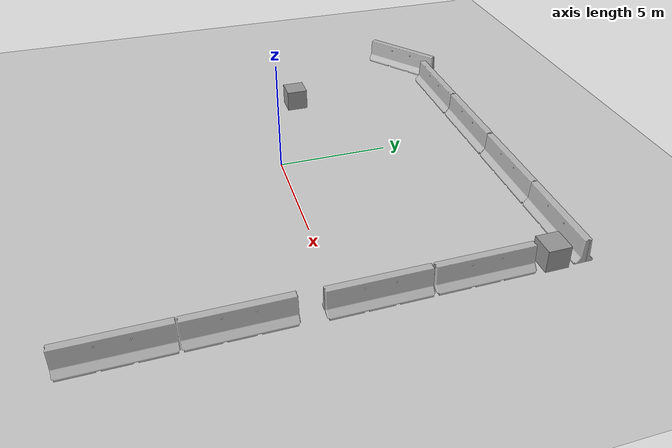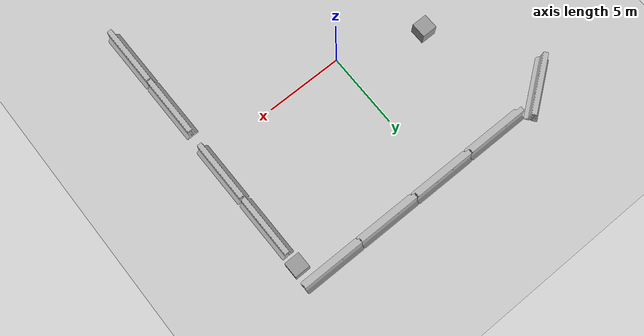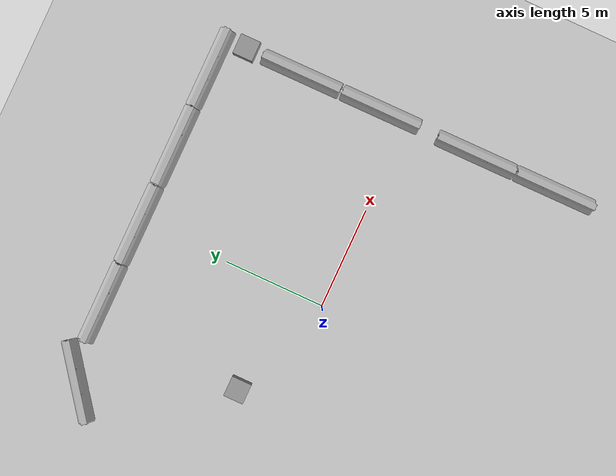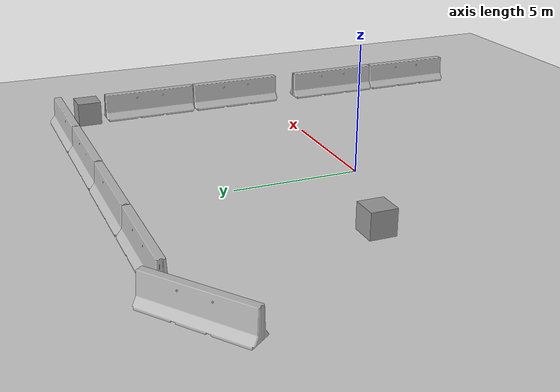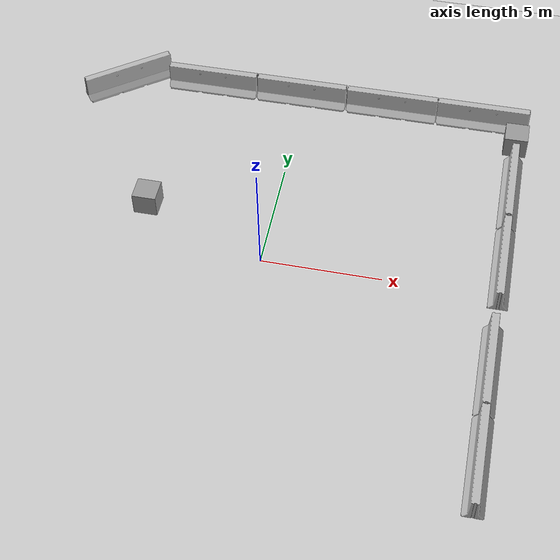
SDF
<sdf version="1.6">
 <world name="default">
  <model name="ground_plane">
   <static>1</static>
   <link name="link">
    <collision name="collision">
     <geometry><plane><normal>0 0 1</normal><size>100 100</size></plane></geometry>
     <surface><friction><ode><mu>100</mu><mu2>50</mu2></ode></friction></surface>
    </collision>
    <visual name="visual">
     <cast_shadows>0</cast_shadows>
     <geometry><plane><normal>0 0 1</normal><size>100 100</size></plane></geometry>
     <material>
      <script><uri>file://media/materials/scripts/gazebo.material</uri><name>Gazebo/Grey</name></script>
     </material>
    </visual>
   </link>
  </model>
  <light name="sun" type="directional">
   <pose>0 0 10 0 -0 0</pose>
   <diffuse>0.8 0.8 0.8 1</diffuse>
   <specular>0.2 0.2 0.2 1</specular>
   <attenuation>
    <range>1000</range>
    <constant>0.9</constant>
    <linear>0.01</linear>
    <quadratic>0.001</quadratic>
   </attenuation>
   <direction>-0.5 0.1 -0.9</direction>
  </light>
  <gravity>0 0 -9.8</gravity>
  <magnetic_field>6e-06 2.3e-05 -4.2e-05</magnetic_field>
  <atmosphere type="adiabatic"/>
  <physics name="default_physics" default="0" type="ode">
   <max_step_size>0.001</max_step_size>
   <real_time_factor>1</real_time_factor>
   <real_time_update_rate>1000</real_time_update_rate>
  </physics>
  <scene><ambient>0.4 0.4 0.4 1</ambient><background>0.7 0.7 0.7 1</background><shadows>1</shadows></scene>
  <spherical_coordinates>
   <surface_model>EARTH_WGS84</surface_model>
   <latitude_deg>0</latitude_deg>
   <longitude_deg>0</longitude_deg>
   <elevation>0</elevation>
   <heading_deg>0</heading_deg>
  </spherical_coordinates>
  <model name="jersey_barrier">
   <static>1</static>
   <link name="link">
    <visual name="visual">
     <geometry><mesh><uri>model://jersey_barrier/meshes/jersey_barrier.dae</uri></mesh></geometry>
    </visual>
    <collision name="upright">
     <pose>0 0 0.5715 0 -0 0</pose>
     <geometry><box><size>4.06542 0.3063 1.143</size></box></geometry>
    </collision>
    <collision name="base">
     <pose>0 0 0.032258 0 -0 0</pose>
     <geometry><box><size>4.06542 0.8107 0.064516</size></box></geometry>
    </collision>
    <collision name="base2">
     <pose>0 0 0.1 0 -0 0</pose>
     <geometry><box><size>4.06542 0.65 0.1</size></box></geometry>
    </collision>
    <collision name="base3">
     <pose>0 0 0.2 0 -0 0</pose>
     <geometry><box><size>4.06542 0.5 0.1</size></box></geometry>
    </collision>
    <collision name="left-angle">
     <pose>0 -0.224 0.2401 0.9 -0 0</pose>
     <geometry><box><size>4.06542 0.5 0.064516</size></box></geometry>
    </collision>
    <collision name="right-angle">
     <pose>0 0.224 0.2401 -0.9 0 0</pose>
     <geometry><box><size>4.06542 0.5 0.064516</size></box></geometry>
    </collision>
   </link>
   <pose>-8.11529 9.05601 0 0 -0 0.644331</pose>
  </model>
  <model name="jersey_barrier_0">
   <static>1</static>
   <link name="link">
    <visual name="visual">
     <geometry><mesh><uri>model://jersey_barrier/meshes/jersey_barrier.dae</uri></mesh></geometry>
    </visual>
    <collision name="upright">
     <pose>0 0 0.5715 0 -0 0</pose>
     <geometry><box><size>4.06542 0.3063 1.143</size></box></geometry>
    </collision>
    <collision name="base">
     <pose>0 0 0.032258 0 -0 0</pose>
     <geometry><box><size>4.06542 0.8107 0.064516</size></box></geometry>
    </collision>
    <collision name="base2">
     <pose>0 0 0.1 0 -0 0</pose>
     <geometry><box><size>4.06542 0.65 0.1</size></box></geometry>
    </collision>
    <collision name="base3">
     <pose>0 0 0.2 0 -0 0</pose>
     <geometry><box><size>4.06542 0.5 0.1</size></box></geometry>
    </collision>
    <collision name="left-angle">
     <pose>0 -0.224 0.2401 0.9 -0 0</pose>
     <geometry><box><size>4.06542 0.5 0.064516</size></box></geometry>
    </collision>
    <collision name="right-angle">
     <pose>0 0.224 0.2401 -0.9 0 0</pose>
     <geometry><box><size>4.06542 0.5 0.064516</size></box></geometry>
    </collision>
   </link>
   <pose>-0.130784 9.55484 0 0 -0 0</pose>
  </model>
  <model name="jersey_barrier_clone">
   <static>1</static>
   <link name="link">
    <visual name="visual">
     <geometry><mesh><uri>model://jersey_barrier/meshes/jersey_barrier.dae</uri></mesh></geometry>
    </visual>
    <collision name="upright">
     <pose>0 0 0.5715 0 -0 0</pose>
     <geometry><box><size>4.06542 0.3063 1.143</size></box></geometry>
    </collision>
    <collision name="base">
     <pose>0 0 0.032258 0 -0 0</pose>
     <geometry><box><size>4.06542 0.8107 0.064516</size></box></geometry>
    </collision>
    <collision name="base2">
     <pose>0 0 0.1 0 -0 0</pose>
     <geometry><box><size>4.06542 0.65 0.1</size></box></geometry>
    </collision>
    <collision name="base3">
     <pose>0 0 0.2 0 -0 0</pose>
     <geometry><box><size>4.06542 0.5 0.1</size></box></geometry>
    </collision>
    <collision name="left-angle">
     <pose>0 -0.224 0.2401 0.9 -0 0</pose>
     <geometry><box><size>4.06542 0.5 0.064516</size></box></geometry>
    </collision>
    <collision name="right-angle">
     <pose>0 0.224 0.2401 -0.9 0 0</pose>
     <geometry><box><size>4.06542 0.5 0.064516</size></box></geometry>
    </collision>
   </link>
   <pose>3.98031 9.54222 0 0 -0 0</pose>
  </model>
  <model name="jersey_barrier_1">
   <static>1</static>
   <link name="link">
    <visual name="visual">
     <geometry><mesh><uri>model://jersey_barrier/meshes/jersey_barrier.dae</uri></mesh></geometry>
    </visual>
    <collision name="upright">
     <pose>0 0 0.5715 0 -0 0</pose>
     <geometry><box><size>4.06542 0.3063 1.143</size></box></geometry>
    </collision>
    <collision name="base">
     <pose>0 0 0.032258 0 -0 0</pose>
     <geometry><box><size>4.06542 0.8107 0.064516</size></box></geometry>
    </collision>
    <collision name="base2">
     <pose>0 0 0.1 0 -0 0</pose>
     <geometry><box><size>4.06542 0.65 0.1</size></box></geometry>
    </collision>
    <collision name="base3">
     <pose>0 0 0.2 0 -0 0</pose>
     <geometry><box><size>4.06542 0.5 0.1</size></box></geometry>
    </collision>
    <collision name="left-angle">
     <pose>0 -0.224 0.2401 0.9 -0 0</pose>
     <geometry><box><size>4.06542 0.5 0.064516</size></box></geometry>
    </collision>
    <collision name="right-angle">
     <pose>0 0.224 0.2401 -0.9 0 0</pose>
     <geometry><box><size>4.06542 0.5 0.064516</size></box></geometry>
    </collision>
   </link>
   <pose>9.66538 1.368 0 0 -0 1.57576</pose>
  </model>
  <model name="jersey_barrier_1_clone">
   <static>1</static>
   <link name="link">
    <visual name="visual">
     <geometry><mesh><uri>model://jersey_barrier/meshes/jersey_barrier.dae</uri></mesh></geometry>
    </visual>
    <collision name="upright">
     <pose>0 0 0.5715 0 -0 0</pose>
     <geometry><box><size>4.06542 0.3063 1.143</size></box></geometry>
    </collision>
    <collision name="base">
     <pose>0 0 0.032258 0 -0 0</pose>
     <geometry><box><size>4.06542 0.8107 0.064516</size></box></geometry>
    </collision>
    <collision name="base2">
     <pose>0 0 0.1 0 -0 0</pose>
     <geometry><box><size>4.06542 0.65 0.1</size></box></geometry>
    </collision>
    <collision name="base3">
     <pose>0 0 0.2 0 -0 0</pose>
     <geometry><box><size>4.06542 0.5 0.1</size></box></geometry>
    </collision>
    <collision name="left-angle">
     <pose>0 -0.224 0.2401 0.9 -0 0</pose>
     <geometry><box><size>4.06542 0.5 0.064516</size></box></geometry>
    </collision>
    <collision name="right-angle">
     <pose>0 0.224 0.2401 -0.9 0 0</pose>
     <geometry><box><size>4.06542 0.5 0.064516</size></box></geometry>
    </collision>
   </link>
   <pose>9.61441 -3.63825 0 0 -0 1.57576</pose>
  </model>
  <model name="jersey_barrier_1_clone_0">
   <static>1</static>
   <link name="link">
    <visual name="visual">
     <geometry><mesh><uri>model://jersey_barrier/meshes/jersey_barrier.dae</uri></mesh></geometry>
    </visual>
    <collision name="upright">
     <pose>0 0 0.5715 0 -0 0</pose>
     <geometry><box><size>4.06542 0.3063 1.143</size></box></geometry>
    </collision>
    <collision name="base">
     <pose>0 0 0.032258 0 -0 0</pose>
     <geometry><box><size>4.06542 0.8107 0.064516</size></box></geometry>
    </collision>
    <collision name="base2">
     <pose>0 0 0.1 0 -0 0</pose>
     <geometry><box><size>4.06542 0.65 0.1</size></box></geometry>
    </collision>
    <collision name="base3">
     <pose>0 0 0.2 0 -0 0</pose>
     <geometry><box><size>4.06542 0.5 0.1</size></box></geometry>
    </collision>
    <collision name="left-angle">
     <pose>0 -0.224 0.2401 0.9 -0 0</pose>
     <geometry><box><size>4.06542 0.5 0.064516</size></box></geometry>
    </collision>
    <collision name="right-angle">
     <pose>0 0.224 0.2401 -0.9 0 0</pose>
     <geometry><box><size>4.06542 0.5 0.064516</size></box></geometry>
    </collision>
   </link>
   <pose>9.63469 -7.74185 0 0 -0 1.57576</pose>
  </model>
  <model name="jersey_barrier_1_clone_1">
   <static>1</static>
   <link name="link">
    <visual name="visual">
     <geometry><mesh><uri>model://jersey_barrier/meshes/jersey_barrier.dae</uri></mesh></geometry>
    </visual>
    <collision name="upright">
     <pose>0 0 0.5715 0 -0 0</pose>
     <geometry><box><size>4.06542 0.3063 1.143</size></box></geometry>
    </collision>
    <collision name="base">
     <pose>0 0 0.032258 0 -0 0</pose>
     <geometry><box><size>4.06542 0.8107 0.064516</size></box></geometry>
    </collision>
    <collision name="base2">
     <pose>0 0 0.1 0 -0 0</pose>
     <geometry><box><size>4.06542 0.65 0.1</size></box></geometry>
    </collision>
    <collision name="base3">
     <pose>0 0 0.2 0 -0 0</pose>
     <geometry><box><size>4.06542 0.5 0.1</size></box></geometry>
    </collision>
    <collision name="left-angle">
     <pose>0 -0.224 0.2401 0.9 -0 0</pose>
     <geometry><box><size>4.06542 0.5 0.064516</size></box></geometry>
    </collision>
    <collision name="right-angle">
     <pose>0 0.224 0.2401 -0.9 0 0</pose>
     <geometry><box><size>4.06542 0.5 0.064516</size></box></geometry>
    </collision>
   </link>
   <pose>9.64333 5.50412 0 0 -0 1.57576</pose>
  </model>
  <model name="jersey_barrier_clone_clone">
   <static>1</static>
   <link name="link">
    <visual name="visual">
     <geometry><mesh><uri>model://jersey_barrier/meshes/jersey_barrier.dae</uri></mesh></geometry>
    </visual>
    <collision name="upright">
     <pose>0 0 0.5715 0 -0 0</pose>
     <geometry><box><size>4.06542 0.3063 1.143</size></box></geometry>
    </collision>
    <collision name="base">
     <pose>0 0 0.032258 0 -0 0</pose>
     <geometry><box><size>4.06542 0.8107 0.064516</size></box></geometry>
    </collision>
    <collision name="base2">
     <pose>0 0 0.1 0 -0 0</pose>
     <geometry><box><size>4.06542 0.65 0.1</size></box></geometry>
    </collision>
    <collision name="base3">
     <pose>0 0 0.2 0 -0 0</pose>
     <geometry><box><size>4.06542 0.5 0.1</size></box></geometry>
    </collision>
    <collision name="left-angle">
     <pose>0 -0.224 0.2401 0.9 -0 0</pose>
     <geometry><box><size>4.06542 0.5 0.064516</size></box></geometry>
    </collision>
    <collision name="right-angle">
     <pose>0 0.224 0.2401 -0.9 0 0</pose>
     <geometry><box><size>4.06542 0.5 0.064516</size></box></geometry>
    </collision>
   </link>
   <pose>8.05078 9.54152 0 0 -0 0</pose>
  </model>
  <model name="jersey_barrier_0_clone">
   <static>1</static>
   <link name="link">
    <visual name="visual">
     <geometry><mesh><uri>model://jersey_barrier/meshes/jersey_barrier.dae</uri></mesh></geometry>
    </visual>
    <collision name="upright">
     <pose>0 0 0.5715 0 -0 0</pose>
     <geometry><box><size>4.06542 0.3063 1.143</size></box></geometry>
    </collision>
    <collision name="base">
     <pose>0 0 0.032258 0 -0 0</pose>
     <geometry><box><size>4.06542 0.8107 0.064516</size></box></geometry>
    </collision>
    <collision name="base2">
     <pose>0 0 0.1 0 -0 0</pose>
     <geometry><box><size>4.06542 0.65 0.1</size></box></geometry>
    </collision>
    <collision name="base3">
     <pose>0 0 0.2 0 -0 0</pose>
     <geometry><box><size>4.06542 0.5 0.1</size></box></geometry>
    </collision>
    <collision name="left-angle">
     <pose>0 -0.224 0.2401 0.9 -0 0</pose>
     <geometry><box><size>4.06542 0.5 0.064516</size></box></geometry>
    </collision>
    <collision name="right-angle">
     <pose>0 0.224 0.2401 -0.9 0 0</pose>
     <geometry><box><size>4.06542 0.5 0.064516</size></box></geometry>
    </collision>
   </link>
   <pose>-4.22712 9.55005 0 0 -0 0</pose>
  </model>
  <model name="unit_box">
   <pose>9.61217 8.34611 0.5 0 -0 0.005167</pose>
   <link name="link">
    <inertial>
     <mass>1</mass>
     <inertia>
      <ixx>0.166667</ixx>
      <ixy>0</ixy>
      <ixz>0</ixz>
      <iyy>0.166667</iyy>
      <iyz>0</iyz>
      <izz>0.166667</izz>
     </inertia>
    </inertial>
    <collision name="collision"><geometry><box><size>1 1 1</size></box></geometry></collision>
    <visual name="visual">
     <geometry><box><size>1 1 1</size></box></geometry>
     <material>
      <script><name>Gazebo/Grey</name><uri>file://media/materials/scripts/gazebo.material</uri></script>
     </material>
    </visual>
   </link>
  </model>
  <model name="unit_box_0">
   <pose>-5.22848 1.9661 0.62769 -1.4e-05 -0 2e-06</pose>
   <link name="link">
    <inertial>
     <mass>1</mass>
     <inertia>
      <ixx>0.166667</ixx>
      <ixy>0</ixy>
      <ixz>0</ixz>
      <iyy>0.166667</iyy>
      <iyz>0</iyz>
      <izz>0.166667</izz>
     </inertia>
    </inertial>
    <collision name="collision"><geometry><box><size>0.999999 1 1</size></box></geometry></collision>
    <visual name="visual">
     <geometry><box><size>0.999999 1 1</size></box></geometry>
     <material>
      <script><name>Gazebo/Grey</name><uri>file://media/materials/scripts/gazebo.material</uri></script>
     </material>
    </visual>
   </link>
  </model>
 </world>
</sdf>
